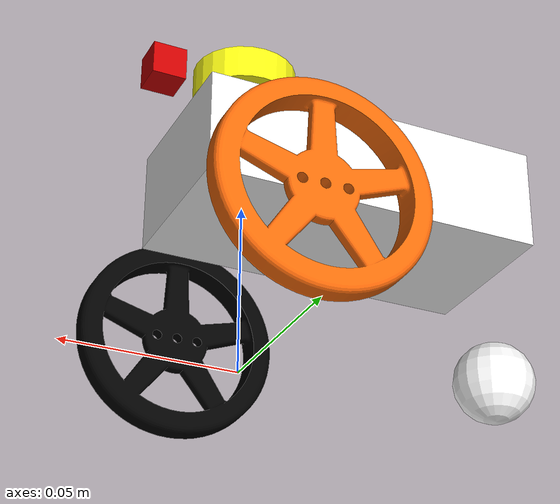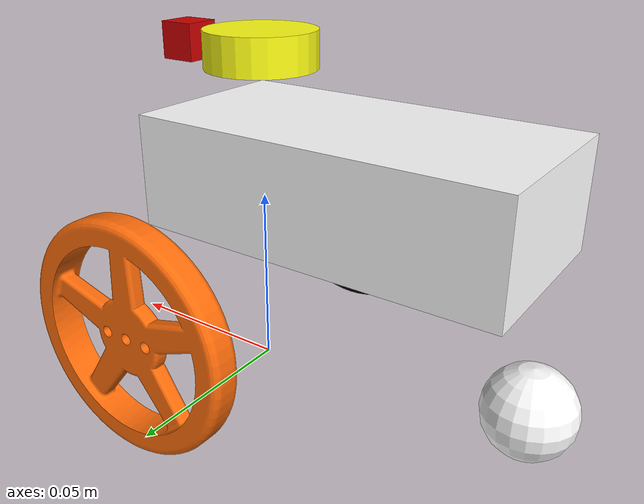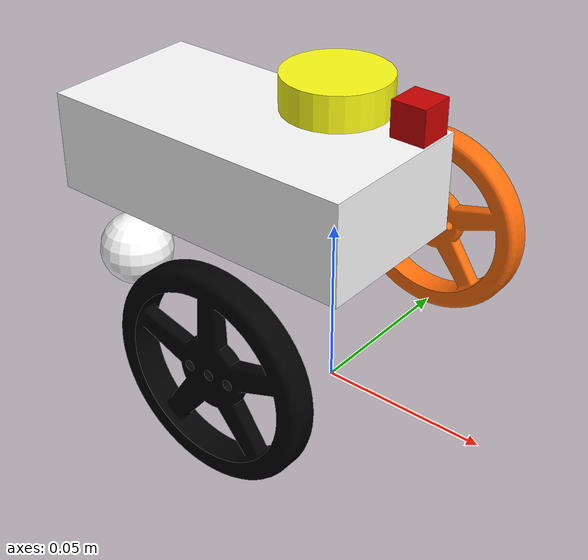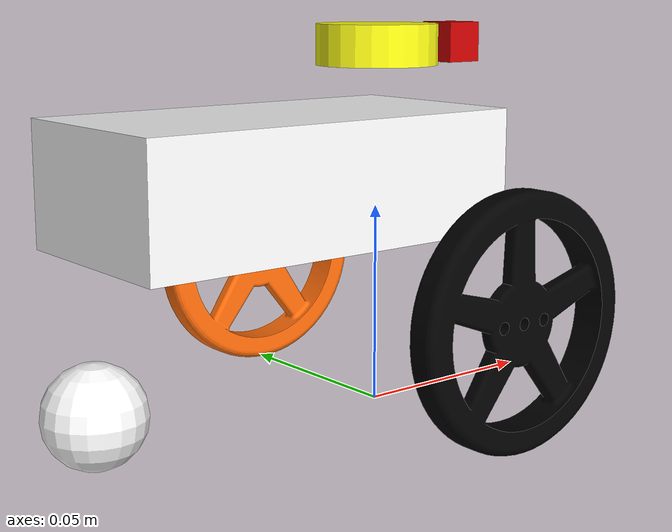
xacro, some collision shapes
<?xml version="1.0"?>
<robot name="jetbot" xmlns:xacro="http://www.ros.org/wiki/xacro">

  <!-- Included URDF/XACRO Files -->
  <xacro:include filename="$(find jetbot_description)/urdf/common.xacro" />
  <!-- Import all Gazebo-customization elements, including Gazebo colors -->
  <xacro:include filename="$(find jetbot_description)/urdf/jetbot.gazebo" />
  <xacro:include filename="$(find jetbot_description)/meshes/sensor/hokuyo.urdf.xacro"/>
  <xacro:include filename="$(find jetbot_description)/meshes/imu.urdf.xacro"/>

  <!-- chassis dimensions -->
  <xacro:property name="PI" value="3.1415926535897931"/>
  <xacro:property name="mass" value="1.0" /> <!-- mass body-->
  <xacro:property name="width" value="0.05" /> <!-- Link 1 -->
  <xacro:property name="height" value="0.03" /> <!-- Link 1 -->
  <xacro:property name="length" value="0.10" /> <!-- Link 1 -->

  <!-- wheel dimensions -->
  <xacro:property name="wheel_mass" value="0.1" /> <!-- mass wheel -->
  <xacro:property name="wheel_radius" value="0.03" /> <!-- radius -->
  <xacro:property name="wheel_width" value="0.01" /> <!-- wheel -->

  <xacro:property name="camera_link" value="0.01" /> <!-- Size of square 'camera' box -->
  <xacro:property name="axel_offset" value="0.05" /> <!-- Space btw top of beam and the each joint -->

  <!-- Used for fixing robot to Gazebo 'base_link' -->
  <!-- base_footprint Definition -->
  <link name="base_footprint" />

  <joint name="base_joint" type="fixed">
    <parent link="base_footprint" />
    <child  link="base_link" />
    <origin xyz="0.0 0.0 0.030"/>
  </joint>

  <!-- Base Link -->
  <link name="base_link">
    <visual>
      <origin xyz="0 0 0" rpy="0 0 0"/>
      <geometry>
	      <mesh filename="package://jetbot_description/meshes/DAE/JetBot-v3-Chassis444.dae"/>
      </geometry>
      <material name="white"/>
    </visual>

    <collision>
      <origin xyz="-0.03 0 0.03" rpy="0 0 0"/>
      <geometry>
	<box size="${length} ${width} ${height}"/>
      </geometry>
    </collision>

    <inertial>
      <mass value="${mass}" />
      <origin xyz="-0.06 0 0.04" rpy="0 0 0" />
      <xacro:box_inertia m="${mass}" x="${length}" y="${width}" z="${height}" />
    </inertial>

  </link>

  <!-- right_wheel and joint-->
  <xacro:wheel_macro parent="base_link" prefix="right_wheel" xyz="0 -0.053 0" color="black"/>

  <!-- left_wheel and joint-->
  <xacro:wheel_macro parent="base_link" prefix="left_wheel" xyz="0 0.047 0" color="orange"/>

  <!-- caster joint-->
  <joint name="caster_0_joint" type="fixed">
    <parent link="base_link"/>
    <child link="caster_0"/>
    <origin rpy="0 0 0" xyz="-0.08 0 -0.018"/>
  </joint>

  <!-- caster -->
  <link name="caster_0">
    <visual>
      <origin rpy="0 0 0" xyz="0 0 0"/>
      <geometry>
        <sphere radius="0.012"/>
      </geometry>
      <material name="white"/>
    </visual>
    <collision>
      <origin rpy="0 0 0" xyz="0 0 0"/>
      <geometry>
        <sphere radius="0.012"/>
      </geometry>
    </collision>

      <inertial>
        <origin rpy="0 0 0" xyz="0 0 0"/>
        <mass value="0.1" />
        <xacro:sphere_inertia  m="0.1" r="0.012" />
      </inertial>

  </link>

  <!-- Camera joint-->
  <joint name="camera_joint" type="fixed">
    <axis xyz="0 0 1" />
    <origin xyz="0.025 0 0.06" rpy="0 0 0"/>
    <parent link="base_link"/>
    <child link="camera_link"/>
  </joint>

  <!-- Camera -->
  <link name="camera_link">
    <visual>
      <origin xyz="0 0 0" rpy="0 0 0"/>
      <geometry>
	<box size="${camera_link} ${camera_link} ${camera_link}"/>
      </geometry>
      <material name="red"/>
    </visual>

    <collision>
      <origin xyz="0 0 0" rpy="0 0 0"/>
      <geometry>
	<box size="${camera_link} ${camera_link} ${camera_link}"/>
      </geometry>
    </collision>

    <inertial>
      <mass value="0.1" />
      <origin xyz="0 0 0" rpy="0 0 0" />
      <xacro:box_inertia m="0.1" x="${camera_link}" y="${camera_link}" z="${camera_link}" />
    </inertial>

  </link>

  <!-- Laser link and plugin -->
  <xacro:hokuyo_laser xyz="0 0 ${0.04 + 0.02}"
	  rpy="0 0 0"
	  parent="base_link" length="0.01" radius="0.015">
  </xacro:hokuyo_laser>

  <!--  imu sensor -->
  <xacro:imu_macro xyz="0 0 ${0.04 + 0.02}"
	  parent="base_link" prefix="imu_sensor">
  </xacro:imu_macro>

</robot>

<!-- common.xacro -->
<robot name="common" xmlns:xacro="http://www.ros.org/wiki/xacro">

  <!-- PROPERTY LIST -->
  <!-- All units in m-kg-s-radians unit system -->
  <xacro:property name="M_PI" value="3.1415926535897931" />

  <!-- Inertial macros. Units are kg*m^2 -->
  <xacro:macro name="box_inertia" params="m x y z">
    <inertia ixx="${m*(y*y+z*z)/12}" ixy = "0" ixz = "0"
             iyy="${m*(z*z+x*x)/12}" iyz = "0"
             izz="${m*(x*x+y*y)/12}" />
  </xacro:macro>
  <xacro:macro name="cylinder_inertia" params="m r h">
    <inertia ixx="${m*(3*r*r+h*h)/12}" ixy="0" ixz="0"
             iyy="${m*(3*r*r+h*h)/12}" iyz="0"
             izz="${m*r*r/2}" />
  </xacro:macro>
  <xacro:macro name="sphere_inertia" params="m r">
    <inertia ixx="${m*r*r/5}" ixy="0" ixz="0"
             iyy="${m*r*r/5}" iyz="0"
             izz="${m*r*r/5}" />
  </xacro:macro>

  <xacro:macro name="gazebo_transmission" params="p">
    <transmission name="${p}_trans" type="SimpleTransmission">
      <type>transmission_interface/SimpleTransmission</type>
      <actuator name="${p}_motor">
        <mechanicalReduction>30</mechanicalReduction>
      </actuator>
      <joint name="${p}_joint">
        <hardwareInterface>hardware_interface/VelocityJointInterface</hardwareInterface>
      </joint>
    </transmission>
  </xacro:macro>

  <!-- Default wheel joint-->>
  <xacro:macro name="wheel_macro" params="parent prefix xyz color">
    <joint name="${prefix}_joint" type="continuous">
      <parent link="${parent}"/>
      <child link="${prefix}_link"/>
      <origin xyz="${xyz}" rpy="0 0 0"/>
      <axis xyz="0 -1 0"/>
    </joint>
    <xacro:gazebo_transmission p="${prefix}"/>
    <link name="${prefix}_link">
    <visual>
      <origin xyz="0 0 0" rpy="0 0 1.57079632679"/>
      <geometry>
	      <mesh filename="package://jetbot_description/meshes/DAE/JetBot-v3-Wheel222.dae"/>
      </geometry>
      <material name="${color}"/>
    </visual>

    <collision>
      <origin xyz="0 0 0" rpy="0 0 1.57079632679"/>
      <geometry>
	      <mesh filename="package://jetbot_description/meshes/DAE/JetBot-v3-Wheel222.dae"/>
      </geometry>
    </collision>

      <inertial>
        <origin xyz="0 0 0" rpy="0 1.5707 1.5707"/>
        <mass value="${wheel_mass}" />
        <xacro:cylinder_inertia  m="${wheel_mass}"
          r="${wheel_radius}" h="${wheel_width}" />
      </inertial>
    </link>
    <gazebo reference="${prefix}_link">
      <mu1>0.2</mu1>
      <mu2>0.2</mu2>
      <kp value="50000" />
      <kd value="10" />
      <material>Gazebo/white</material>
    </gazebo>
  </xacro:macro>

  <material name="black">
    <color rgba="0.0 0.0 0.0 1.0"/>
  </material>

  <material name="blue">
    <color rgba="0.0 0.0 0.8 1.0"/>
  </material>

  <material name="green">
    <color rgba="0.0 0.8 0.0 1.0"/>
  </material>

  <material name="grey">
    <color rgba="0.2 0.2 0.2 1.0"/>
  </material>

  <material name="orange">
    <color rgba="${255/255} ${108/255} ${10/255} 1.0"/>
  </material>

  <material name="brown">
    <color rgba="${222/255} ${207/255} ${195/255} 1.0"/>
  </material>

  <material name="red">
    <color rgba="0.8 0.0 0.0 1.0"/>
  </material>

  <material name="white">
    <color rgba="1.0 1.0 1.0 1.0"/>
  </material>

</robot>

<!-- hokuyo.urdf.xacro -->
<robot xmlns:xacro="http://www.ros.org/wiki/xacro" name="hokuyo">
<material name="yellow" >
    <color rgba="1.0 1.0 0.0784313725490196 1.0" />
</material>
<xacro:macro name="hokuyo_laser" params="xyz rpy parent length radius">

    <joint name="hokuyo_laser_joint" type="fixed">
        <axis xyz="0 0 1" />
        <origin xyz="${xyz}" rpy="${rpy}"/>
        <parent link="${parent}"/>
        <child link="hokuyo_laser_link"/>
    </joint>

    <link name="hokuyo_laser_link">
        <collision>
            <origin xyz="0 0 0" rpy="0 0 0"/>
            <geometry>
		    <cylinder length="${length}" radius="${radius}"/>
	    </geometry>
        </collision>
        <visual>
            <origin xyz="0 0 0" rpy="0 0 0"/>
            <geometry>
                <cylinder length="${length}" radius="${radius}"/>
	    </geometry>
	    <material name="yellow"/>
        </visual>
        <inertial>
            <mass value="1e-5" />
            <origin xyz="0 0 0" rpy="0 0 0"/>
            <inertia ixx="1e-6" ixy="0" ixz="0" iyy="1e-6" iyz="0" izz="1e-6" />
        </inertial>
    </link>
    <gazebo reference="hokuyo_laser_link">
        <material>Gazebo/Yellow</material>
    </gazebo>
    <gazebo reference="hokuyo_laser_link">
        <gravity>true</gravity>
        <sensor type="ray" name="head_hokuyo_sensor">
            <pose>0 0 0 0 0 0</pose>
            <visualize>true</visualize>
            <update_rate>40</update_rate>
            <ray>
                <scan>
                    <horizontal>
                        <samples>360</samples>
                        <resolution>1</resolution>
                        <min_angle>-3.14159</min_angle>
                        <max_angle>3.14159</max_angle>
                    </horizontal>
                </scan>
                <range>
                    <min>0.2</min>
                    <max>40</max>
                    <resolution>0.025</resolution>
                </range>
                <noise>
                    <type>gaussian</type>
                    <mean>0.0</mean>
                    <stddev>0.0</stddev>
                </noise>
            </ray>
            <plugin name="gazebo_ros_head_hokuyo_controller" filename="libgazebo_ros_laser.so">
                <robotNamespace></robotNamespace>
                <topicName>laser_scan</topicName>
                <frameName>hokuyo_laser_link</frameName>
            </plugin>
        </sensor>
    </gazebo>

</xacro:macro>

</robot>

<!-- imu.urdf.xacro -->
<robot xmlns:xacro="http://www.ros.org/wiki/xacro" name="imu">
<material name="golden" >
    <color rgba="0.9607843137254902 0.7490196078431373 0.011764705882352941 1.0" />
</material>
<xacro:macro name="imu_macro" params="parent prefix xyz">
    <joint name="imu_joint" type="fixed">
      <parent link="${parent}"/>
      <child  link="${prefix}_link"/>
      <origin xyz="${xyz}" rpy="0 0 0"/>
    </joint>

    <link name="${prefix}_link"/>
    <gazebo reference="${prefix}_link">
      <gravity>true</gravity>
      <sensor name="imu_sensor" type="imu">
        <always_on>true</always_on>
        <update_rate>100</update_rate>
        <visualize>true</visualize>
        <topic>data</topic>
        <plugin filename="libgazebo_ros_imu_sensor.so" name="imu_plugin">
          <topicName>${prefix}/data</topicName>
          <bodyName>${prefix}_link</bodyName>
          <updateRateHZ>10.0</updateRateHZ>
          <gaussianNoise>0.0</gaussianNoise>
          <xyzOffset>0 0 0</xyzOffset>
          <rpyOffset>0 0 0</rpyOffset>
          <frameName>${prefix}_link</frameName>
        </plugin>
        <pose>0 0 0 0 0 0</pose>
      </sensor>
    </gazebo>
  </xacro:macro>
</robot>
